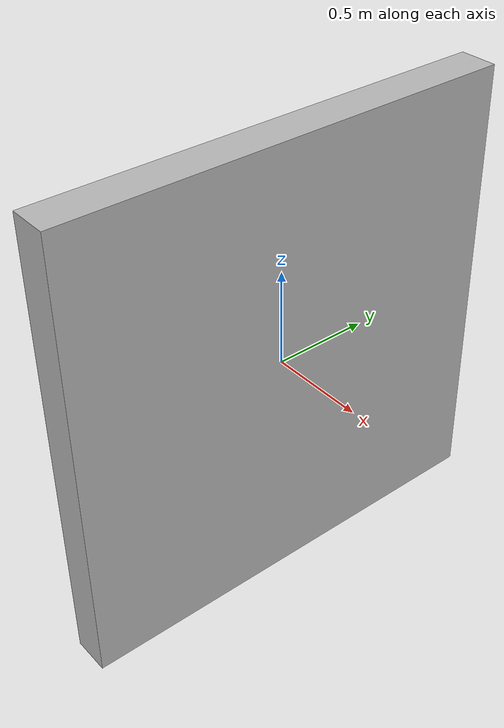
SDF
<?xml version="1.0"?>
<sdf version="1.9">
    <model name="charuco">
        <pose>0 0 0 0 0 0</pose>
        <link name="charuco_link">
            <pose>0 0 0 0 0 0</pose>

            <inertial>
                <mass>1.0</mass>
                <inertia>
                    <ixx>8.33e-06</ixx>
                    <ixy>0</ixy>
                    <ixz>0</ixz>
                    <iyy>8.33e-06</iyy>
                    <iyz>0</iyz>
                    <izz>8.33e-06</izz>
                </inertia>
            </inertial>

            <collision name="charuco_link_collision">
                <geometry>
                    <box>
                        <size>1 1 1</size>
                    </box>
                </geometry>
            </collision>

            <visual name='charuco_link_visual'>
                <geometry>
                    <mesh>
                        <scale>1 1 1</scale>
                        <uri>model://charuco/meshes/charuco.dae</uri>
                    </mesh>
                </geometry>
            </visual>
        </link>

        <joint name="world_to_base_link" type="fixed">
            <parent>world</parent>
            <child>charuco_link</child>
            <origin> 0 0 0 0 0 0</origin>
        </joint>

        <plugin filename="ignition-gazebo-pose-publisher-system"
            name="ignition::gazebo::systems::PosePublisher">
            <publish_link_pose>false</publish_link_pose>
            <publish_collision_pose>false</publish_collision_pose>
            <publish_visual_pose>false</publish_visual_pose>
            <publish_nested_model_pose>true</publish_nested_model_pose>
            <publish_model_pose>true</publish_model_pose>
            <use_pose_vector_msg>false</use_pose_vector_msg>
            <static_publisher>false</static_publisher>
            <update_frequency>100</update_frequency>
        </plugin>
    </model>
</sdf>
